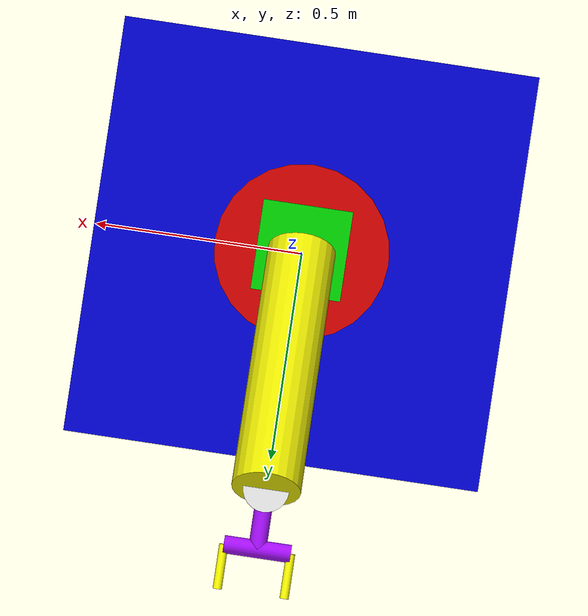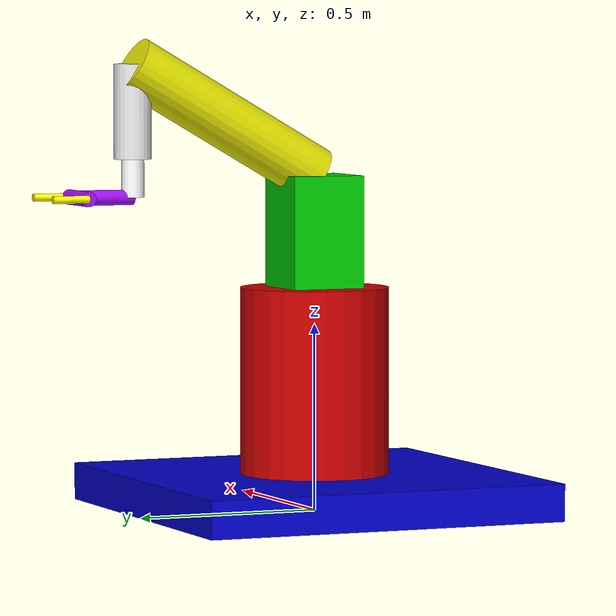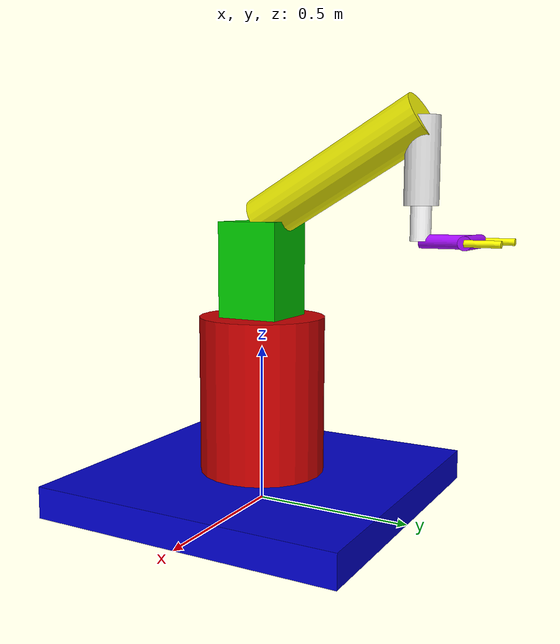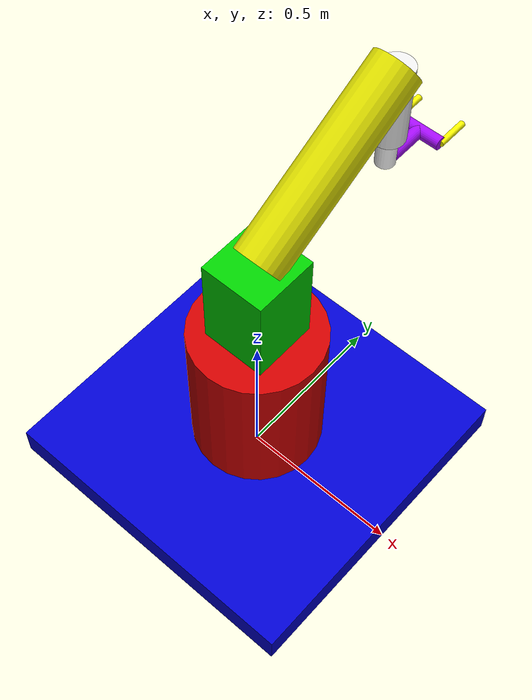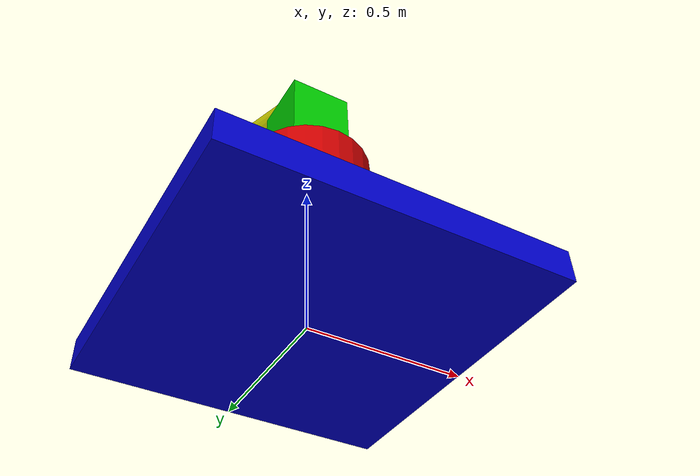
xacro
<?xml version="1.0"?>
<robot name="manipulator" xmlns:xacro="http://ros.org/wiki/xacro">

<xacro:include filename="$(find robot_description)/urdf/FromDegtoRad.xacro"/>
<xacro:include filename="$(find robot_description)/urdf/Inertial.xacro"/>
<!-- Joints and Links Names-->
<!-- Parameters that you can change-->

<!-- Base link-->
<xacro:property name = "size1_x" value= "1"/>
<xacro:property name = "size1_y" value= "1"/>
<xacro:property name = "size1_z" value= "0.1"/>

<!-- link 1-->
<xacro:property name = "len1" value= "0.5"/>
<xacro:property name = "rad1" value= "0.2"/>

<!-- link 2-->
<xacro:property name = "size2_x" value= "0.2"/>
<xacro:property name = "size2_y" value= "0.2"/>
<xacro:property name = "size2_z" value= "0.8"/>

<!-- link 3-->
<xacro:property name = "roll" value= "60"/>
<xacro:property name = "len3" value= "0.6"/>
<xacro:property name = "rad3" value= "0.075"/>

<!-- link 4-->
<xacro:property name = "len4" value= "0.25"/>
<xacro:property name = "rad4" value= "0.05"/>

<!-- link 5-->
<xacro:property name = "len5" value= "0.1"/>
<xacro:property name = "rad5" value= "0.03"/>

<!-- link 6-->
<xacro:property name = "len6" value= "0.15"/>
<xacro:property name = "rad6" value= "0.02"/>

<!-- link 7-->
<xacro:property name = "len7" value= "0.15"/>
<xacro:property name = "rad7" value= "0.02"/>

<!-- link 8-->
<xacro:property name = "len8" value= "0.1"/>
<xacro:property name = "rad8" value= "0.01"/>

<!-- link 9 the same as 8-->

<!-- Base link - box-->

<!-- Definition and Geometry of world frame-->
  <link name="world_link"/>

<!-- zero_joint -->
  <joint name="zero_joint" type="fixed">
    <origin rpy="0 0 0" xyz="0 0 0"/>
    <parent link="world_link"/>
    <child link="base_link"/>
  </joint>

<!-- Definition and Geometry of base link-->

  <link name="base_link">
   <visual>
    <origin rpy="0 0 0" xyz="0 0 ${size1_z/2}"/>
     <geometry>
	 <box size = "${size1_x} ${size1_y} ${size1_z}"/>
     </geometry>
<!-- Material and color of 0 -->
   <material name = "blue">
     <color rgba = "0 0 0.8 1"/>
   </material>
   </visual>
  <collision>
       <origin rpy="0 0 0" xyz="0 0 ${size1_z/2}"/>
      <geometry>
        <box size = "${size1_x} ${size1_y} ${size1_z}"/>
      </geometry>
  </collision>
      <mass value="1000"/>
      <inertia ixx="1.0" ixy="0.0" ixz="0.0" iyy="0.5" iyz="0.0" izz="1.0"/>

   </link>

<!-- JOINT 1 -->
  <joint name="first_joint" type="revolute">
    <origin rpy="0 0 0" xyz="0 0 ${size1_z}"/>
    <parent link="base_link"/>
    <child link="first_link"/>
    <axis xyz="0 0 1"/>
     <limit effort="0" lower="-${90*DEG2RAD}" upper="${90*DEG2RAD}" velocity="1"/>
  </joint>

<!-- Definition and Geometry of FIRST 1  link-->

  <link name="first_link">
   <visual>
    <origin rpy="0 0 0" xyz="0 0 ${len1/2}"/>
     <geometry>
	<cylinder radius = "${rad1}" length = "${len1}"/>
     </geometry>
<!-- Material and color of 1st -->
    <material name = "red">
     <color rgba = "0.8 0 0 1"/>
    </material>
   </visual>
  <collision>
      <origin rpy="0 0 0" xyz="0 0 ${len1/2}"/>
     <geometry>
	<cylinder radius = "${rad1}" length = "${len1}"/>
     </geometry>
  </collision>
      <xacro:default_inertial mass="100"/>
   </link>

<!-- JOINT 2 -->
  <joint name="second_joint" type="prismatic">
    <origin rpy="0 0 0" xyz="0 0 ${len1}"/>
    <parent link="first_link"/>
    <child link="second_link"/>
    <axis xyz="0 0 1"/>
     <limit effort="100" lower="0" upper="0.4" velocity="0.5"/>
  </joint>

<!-- Definition and Geometry of SECOND 2 link-->

  <link name="second_link">
   <visual>
    <origin rpy="0 0 0" xyz="0 0 ${-size2_z/2+0.3}"/>
     <geometry>
	<box size = "${size2_x} ${size2_y} ${size2_z}"/>
     </geometry>
<!-- Material and color of 2st -->
    <material name = "green">
     <color rgba = "0 0.8 0 1"/>
    </material>
   </visual>
  <collision>
      <origin rpy="0 0 0" xyz="0 0 ${-size2_z/2+0.3}"/>
     <geometry>
	<box size = "${size2_x} ${size2_y} ${size2_z}"/>
     </geometry>
  </collision>

      <xacro:default_inertial mass="50"/>
   </link>

<!-- JOINT 3 -->
  <joint name="third_joint" type="revolute">
    <origin rpy="${-roll*DEG2RAD} 0 0" xyz="0 0 0.3"/>
    <parent link="second_link"/>
    <child link="third_link"/>
    <axis xyz="1 0 0"/>
     <limit effort="0" lower="-${45*DEG2RAD}" upper="${45*DEG2RAD}" velocity="0.5"/>
  </joint>

<!-- Definition and Geometry of THIRD 3 link-->

  <link name="third_link">
   <visual>
       <origin rpy="0 0 0" xyz="0 0 ${len3/2}"/>
     <geometry>
	<cylinder radius = "${rad3}" length = "${len3}"/>
     </geometry>
<!-- Material and color of 3st -->
    <material name = "yellow">
     <color rgba = "0.9 0.9 0 1"/>
    </material>
   </visual>
  <collision>
       <origin rpy="0 0 0" xyz="0 0 ${len3/2}"/>
     <geometry>
	<cylinder radius = "${rad3}" length = "${len3}"/>
     </geometry>
  </collision>
      <xacro:default_inertial mass="20"/>
   </link>

<!-- JOINT 4 -->
  <joint name="fourth_joint" type="revolute">
    <origin rpy="${-(180-roll)*DEG2RAD} 0 0" xyz="0 0 ${len3}"/>
     <parent link="third_link"/>
     <child link="fourth_link"/>
    <axis xyz="1 0 0"/>
     <limit effort="0" lower="0" upper="${180*DEG2RAD}" velocity="0.5"/>
  </joint>

<!-- Definition and Geometry of FOURTH 4 link-->

  <link name="fourth_link">
   <visual>
       <origin rpy="0 0 0" xyz="0 0 ${len4/2}"/>
     <geometry>
	<cylinder radius = "${rad4}" length = "${len4}"/>
     </geometry>
<!-- Material and color of 4st -->
    <material name = "grey">
     <color rgba = "0.9 0.9 0.9 1"/>
    </material>
   </visual>
  <collision>
       <origin rpy="0 0 0" xyz="0 0 0.125"/>
     <geometry>
	<cylinder radius = "${rad4}" length = "${len4}"/>
     </geometry>
  </collision>
      <xacro:default_inertial mass="10"/>
   </link>

<!-- JOINT 5 -->
  <joint name="fifth_joint" type="revolute">
    <origin rpy="0 0 0" xyz="0 0 ${len4}"/>
     <parent link="fourth_link"/>
     <child link="fifth_link"/>
    <axis xyz="0 0 1"/>
     <limit effort="0" lower="-${90*DEG2RAD}" upper="${90*DEG2RAD}" velocity="1"/>
  </joint>

<!-- Definition and Geometry of FIFTH 5 link-->

  <link name="fifth_link">
   <visual>
       <origin rpy="0 0 0" xyz="0 0 ${len5/2}"/>
     <geometry>
	<cylinder radius = "${rad5}" length = "${len5}"/>
     </geometry>
<!-- Material and color of 5st -->
    <material name = "white">
     <color rgba = "1 1 1 1"/>
    </material>
   </visual>
  <collision>
       <origin rpy="0 0 0" xyz="0 0 ${len5/2}"/>
     <geometry>
	<cylinder radius = "${rad5}" length = "${len5}"/>
     </geometry>
  </collision>
      <xacro:default_inertial mass="4"/>
   </link>

<!-- JOINT 6 -->
  <joint name="sixth_joint" type="revolute">
    <origin rpy="${90*DEG2RAD} 0 0" xyz="0 0 ${len5}"/>
     <parent link="fifth_link"/>
     <child link="sixth_link"/>
    <axis xyz="1 0 0"/>
     <limit effort="0" lower="-${180*DEG2RAD}" upper="0" velocity="1"/>
  </joint>

<!-- Definition and Geometry of SIXTH 6 link-->

  <link name="sixth_link">
   <visual>
       <origin rpy="0 0 0" xyz="0 0 ${len6/2}"/>
     <geometry>
	<cylinder radius = "${rad6}" length = "${len6}"/>
     </geometry>
<!-- Material and color of 6st -->
    <material name = "purple">
     <color rgba = "0.64 0.05 0.97 1"/>
    </material>
   </visual>
  <collision>
       <origin rpy="0 0 0" xyz="0 0 ${len6/2}"/>
     <geometry>
	<cylinder radius = "${rad6}" length = "${len6}"/>
     </geometry>
  </collision>
      <xacro:default_inertial mass="2"/>
   </link>

<!-- JOINT 7 -->
  <joint name="seventh_joint" type="fixed">
    <origin rpy="0 ${90*DEG2RAD} 0" xyz="0 0 ${len6}"/>
     <parent link="sixth_link"/>
     <child link="seventh_link"/>
  </joint>

<!-- Definition and Geometry of SEVENTH 7 link-->

  <link name="seventh_link">
   <visual>
       <origin rpy="0 0 0" xyz="0 0 0"/>
     <geometry>
	<cylinder radius = "${rad7}" length = "${len7}"/>
     </geometry>
<!-- Material and color of 7 -->
    <material name = "purple">
     <color rgba = "0.64 0.05 0.97 1"/>
    </material>
   </visual>
  <collision>
       <origin rpy="0 0 0" xyz="0 0 0"/>
     <geometry>
	<cylinder radius = "${rad7}" length = "${len7}"/>
     </geometry>
  </collision>
      <xacro:default_inertial mass="1"/>
   </link>

<!-- JOINT 8 -->
  <joint name="eighth_joint" type="revolute">
    <origin rpy="0 -${90*DEG2RAD} 0" xyz="0 0 ${len7/2}"/>
     <parent link="seventh_link"/>
     <child link="eighth_link"/>
    <axis xyz="0 1 0"/>
     <limit effort="0" lower="-${30*DEG2RAD}" upper="${30*DEG2RAD}" velocity="1"/>
  </joint>

<!-- Definition and Geometry of SIXTH 8 link-->

  <link name="eighth_link">
   <visual>
       <origin rpy="0 0 0" xyz="0 0 ${len8/2}"/>
     <geometry>
	<cylinder radius = "${rad8}" length = "${len8}"/>
     </geometry>
<!-- Material and color of 8st -->
    <material name = "yellow2">
     <color rgba = "1 1 0 1"/>
    </material>
   </visual>
  <collision>
       <origin rpy="0 0 0" xyz="0 0 ${len8/2}"/>
     <geometry>
	<cylinder radius = "${rad8}" length = "${len8}"/>
     </geometry>
  </collision>
     <xacro:default_inertial mass="0.5"/>
   </link>

<!-- JOINT 9 -->
  <joint name="nineth_joint" type="revolute">
    <origin rpy="0 -${90*DEG2RAD} 0" xyz="0 0 -${len7/2}"/>
     <parent link="seventh_link"/>
     <child link="nineth_link"/>
    <axis xyz="0 1 0"/>
      <limit effort="0" lower="-${30*DEG2RAD}" upper="${30*DEG2RAD}" velocity="1"/>
  </joint>

<!-- Definition and Geometry of SIXTH 8 link-->

  <link name="nineth_link">
   <visual>
       <origin rpy="0 0 0" xyz="0 0 ${len8/2}"/>
     <geometry>
	<cylinder radius = "${rad8}" length = "${len8}"/>
     </geometry>
<!-- Material and color of 8st -->
    <material name = "yellow2">
     <color rgba = "1 1 0 1"/>
    </material>
   </visual>
  <collision>
       <origin rpy="0 0 0" xyz="0 0 ${len8/2}"/>
     <geometry>
	<cylinder radius = "${rad8}" length = "${len8}"/>
     </geometry>
  </collision>
      <xacro:default_inertial mass="0.5"/>
   </link>

</robot>

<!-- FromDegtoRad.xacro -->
<robot xmlns:xacro="http://ros.org/wiki/xacro">

<xacro:property name="DEG2RAD" value="0.017453292519943295" />

</robot>

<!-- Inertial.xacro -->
<robot xmlns:xacro="http://ros.org/wiki/xacro">

 <xacro:macro name="default_inertial" params="mass">
            <inertial>
                    <mass value="${mass}" />
                    <inertia ixx="1.0" ixy="0.0" ixz="0.0"
                         iyy="1.0" iyz="0.0"
                        izz="1.0" />
           </inertial>
       </xacro:macro>

</robot>
